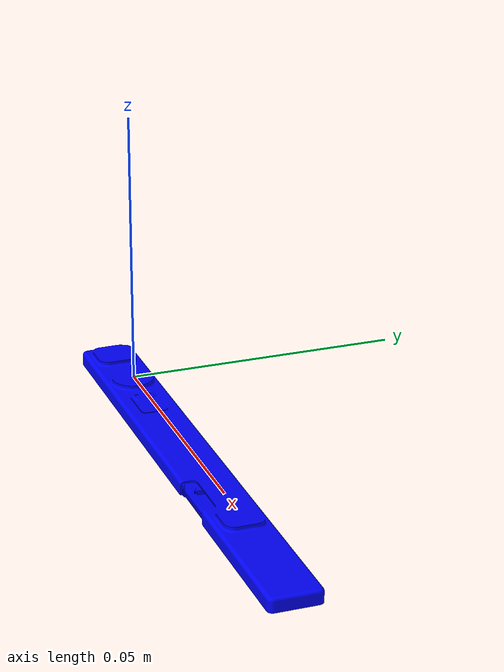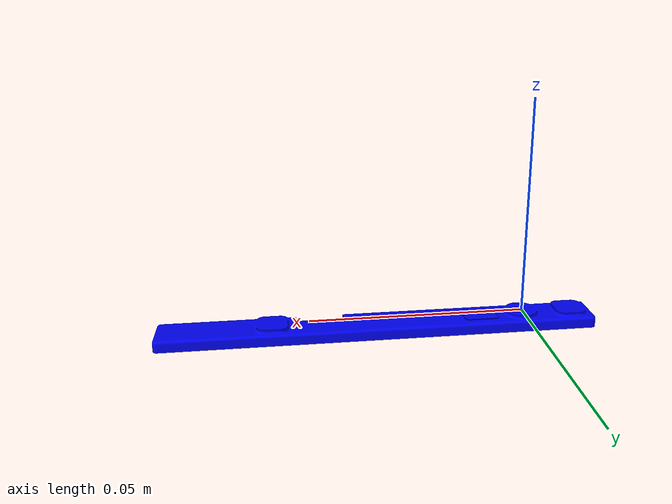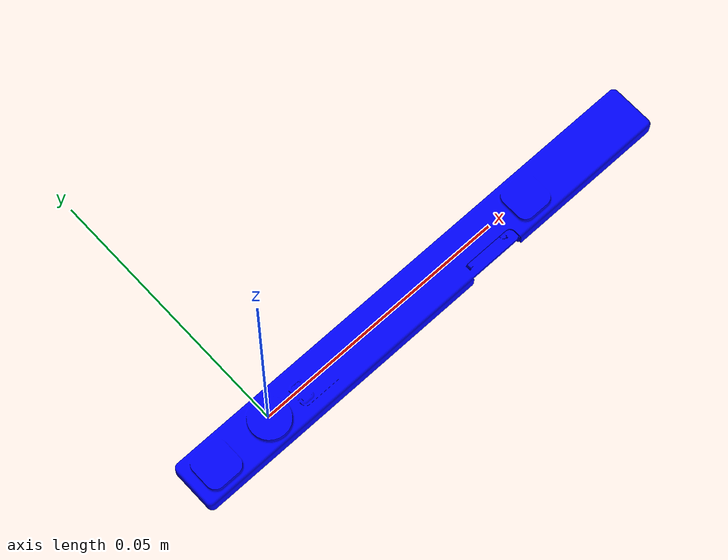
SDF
<?xml version="1.0" ?>
<sdf version="1.4">
    <model name="r200">
      <link name="r200_link">
        <pose>0 0 0 0 0 0</pose>
        <collision name="r200_collision">
          <geometry>
            <mesh>
              <uri>model://r200/meshes/r200.dae</uri>
              <scale>1 1 1</scale>
            </mesh>
          </geometry>
	  <surface>
	    <friction>
	      <ode>
		<mu>1.0</mu>
		<mu2>1.0</mu2>
	      </ode>
	    </friction>
	  </surface>
        </collision>
        <visual name="r200">
          <geometry>
            <mesh>
              <uri>model://r200/meshes/r200.dae</uri>
              <scale>1 1 1</scale>
            </mesh>
          </geometry>
          <cast_shadows>false</cast_shadows>
        </visual>
      </link>
      <static>true</static>
    </model>
</sdf>
